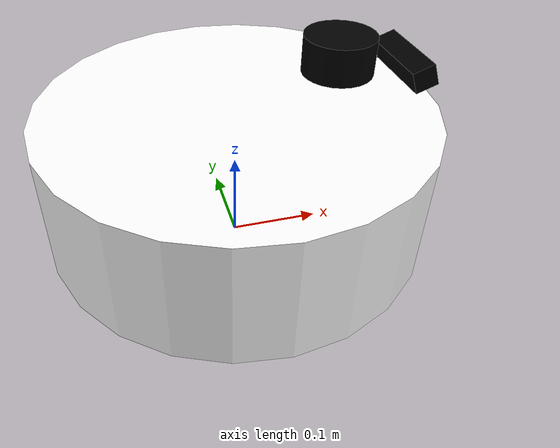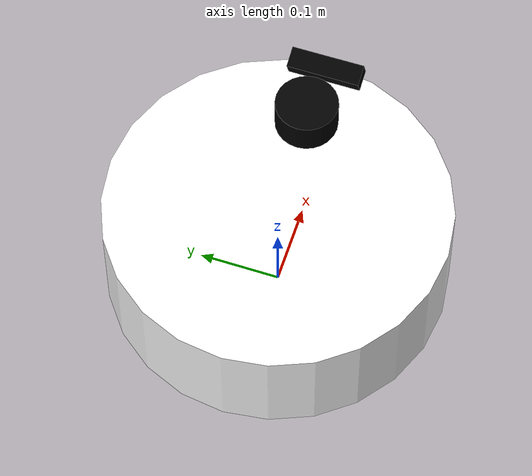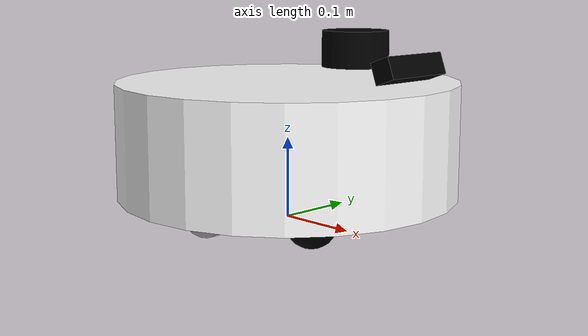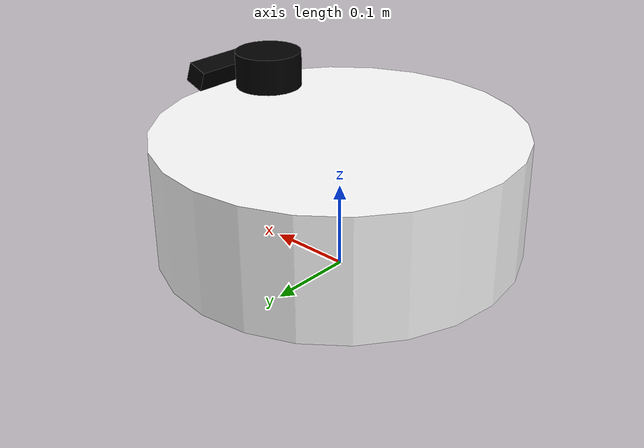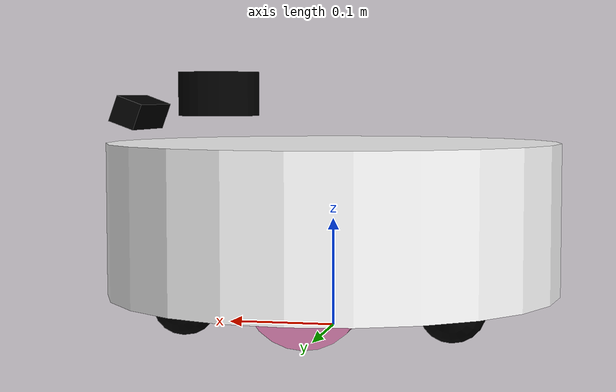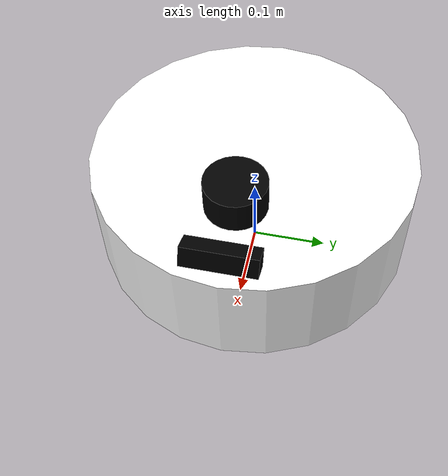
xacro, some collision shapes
<?xml version="1.0"?>
<!-- Copyright (c) Qualcomm Technologies, Inc. and/or its subsidiaries.
SPDX-License-Identifier: BSD-3-Clause-Clear -->
<robot xmlns:xacro="http://www.ros.org/wiki/xacro" name="$(arg robot_name)">
  <!-- Robot base -->
  <xacro:include filename="$(find qrb_ros_sim_description)/urdf/qrb_robot_base/qrb_robot_base_mini.urdf" />
  <xacro:qrb_robot_base_mini ns=""/>

  <!-- Gazebo Sensors -->
  <!-- Laser -->
  <xacro:arg name="enable_laser" default="false"/>
  <xacro:arg name="laser_config" default=""/>
  <xacro:if value="${'$(arg enable_laser)' if '$(arg laser_config)' != '' else 'false'}">
    <xacro:include filename="$(find qrb_ros_sim_gazebo)/urdf/xacro/gazebo_lidar.xacro" />
    <xacro:gazebo_lidar ns="" reference_link="laser"
      laser_params_yaml_path="$(arg laser_config)"/>
  </xacro:if>
  <!-- IMU -->
  <xacro:arg name="enable_imu" default="false"/>
  <xacro:arg name="imu_config" default=""/>
  <xacro:if value="${'$(arg enable_imu)' if '$(arg imu_config)' != '' else 'false'}">
    <xacro:include filename="$(find qrb_ros_sim_gazebo)/urdf/xacro/gazebo_imu.xacro" />
    <xacro:gazebo_imu ns="" reference_link="base_imu_link"
      imu_params_yaml_path="$(arg imu_config)"/>
  </xacro:if>
  <!-- RGB camera -->
  <xacro:arg name="enable_rgb_camera" default="false"/>
  <xacro:arg name="rgb_camera_config" default=""/>
  <xacro:if value="${'$(arg enable_rgb_camera)' if '$(arg rgb_camera_config)' != '' else 'false'}">
    <xacro:include filename="$(find qrb_ros_sim_gazebo)/urdf/xacro/gazebo_rgb_camera.xacro" />
    <xacro:gazebo_camera ns="" reference_link="base_camera_color_frame"
      camera_params_yaml_path="$(arg rgb_camera_config)"/>
  </xacro:if>
  <!-- Depth camera -->
  <xacro:arg name="enable_depth_camera" default="false"/>
  <xacro:arg name="depth_camera_config" default=""/>
  <xacro:if value="${'$(arg enable_depth_camera)' if '$(arg depth_camera_config)' != '' else 'false'}">
    <xacro:include filename="$(find qrb_ros_sim_gazebo)/urdf/xacro/gazebo_depth_camera.xacro" />
    <xacro:gazebo_depth_camera ns="" reference_link="base_camera_depth_frame"
      depth_camera_params_yaml_path="$(arg depth_camera_config)"/>
  </xacro:if>

  <!-- Gazebo Plugins -->
  <!-- gz-sim-diff-drive-system controller -->
  <xacro:property name="separation_multiplier" value="1.125"/>
  <xacro:property name="radius_multiplier" value="1.0"/>
  <xacro:property name="odom_update_rate" value="50"/>
  <xacro:include filename="$(find qrb_ros_sim_gazebo)/urdf/xacro/gazebo_qrb_robot_base_diff_drive.xacro" />
  <xacro:qrb_robot_base_diff_drive ns="" wheel_separation="${wheel_separation}" separation_multiplier="${separation_multiplier}"
      wheel_radius="${wheel_radius}" radius_multiplier="${radius_multiplier}" update_rate="${odom_update_rate}"/>
  <!-- gz-sim-joint-state-publisher-system controller -->
  <xacro:include filename="$(find qrb_ros_sim_gazebo)/urdf/xacro/gazebo_qrb_robot_base_joint_state_pub.xacro" />
  <xacro:qrb_robot_base_joint_state_pub ns=""/>

</robot>

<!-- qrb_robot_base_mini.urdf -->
<!--
# Copyright (c) 2025 Qualcomm Innovation Center, Inc. All rights reserved.
# SPDX-License-Identifier: BSD-3-Clause-Clear
-->
<robot xmlns:xacro="http://ros.org/wiki/xacro">
  <xacro:macro name="qrb_robot_base_mini" params="ns:=''">
    <xacro:property name="namespace" value="${ns + '/' if ns != '' else ''}" />
    <!-- Inertia matrices -->
    <xacro:include filename="$(find qrb_ros_sim_description)/urdf/qrb_robot_base/inertia_macros.xacro" />
    <!-- Material matrices -->
    <xacro:include filename="$(find qrb_ros_sim_description)/urdf/qrb_robot_base/material_macros.xacro" />

    <xacro:property name="cylinder_radius" value="0.21" />
    <xacro:property name="cylinder_height" value="0.14" />
    <xacro:property name="chassis_height" value="0.031" />
    <xacro:property name="caster_wheel_radius" value="0.03"/>
    <xacro:property name="wheel_radius" value="0.053" scope="parent" />
    <xacro:property name="wheel_thickness" value="0.031" />
    <xacro:property name="wheel_separation" value="0.25" scope="parent" />
    <xacro:property name="laser_radius" value="0.038" />
    <xacro:property name="laser_thickness" value="0.041" />
    <xacro:property name="laser_heigth" value="0.216" />
    <xacro:property name="camera_box_length" value="0.09" />
    <xacro:property name="camera_box_width" value="0.025" />
    <xacro:property name="camera_box_heigth" value="0.025" />

    <xacro:property name="base_link_mass" value="16.5"/>
    <xacro:property name="laser_link_mass" value="0.3"/>
    <xacro:property name="base_camera_link_mass" value="0.1"/>
    <xacro:property name="wheel_link_mass" value="1"/>
    <xacro:property name="caster_wheel_link_mass" value="0.3"/>

    <link name="${namespace}base_footprint"/>

    <link name="${namespace}base_link">
      <visual>
        <origin rpy="0 0 -${pi/2}" xyz="0 0 -${cylinder_height/2}"/>
        <geometry>
          <mesh filename="file://$(find qrb_ros_sim_description)/meshes/qrb_robot_base/wheelTec_AMR_mini.STL" scale="0.001 0.001 0.001"/>
        </geometry>
        <material name="white"/>
      </visual>
      <inertial name="base_link_inertial">
        <mass value="${base_link_mass}"/>
        <xacro:cylinder_inertia_calculator mass="${base_link_mass}" radius="${cylinder_radius}" length="${cylinder_height}" />
      </inertial>
      <collision name="base_link_collision">
        <origin rpy="0 0 0" xyz="0 0 0"/>
        <geometry>
          <cylinder radius="${cylinder_radius}" length="${cylinder_height}"/>
        </geometry>
      </collision>
    </link>

    <joint name="${namespace}base_link_joint" type="fixed">
      <parent link="${namespace}base_footprint"/>
      <child link="${namespace}base_link"/>
      <origin xyz="0 0 ${chassis_height+cylinder_height/2}"/>
    </joint>

    <link name="${namespace}laser">
      <visual>
        <origin xyz="0 0 0" rpy="0 0 ${pi}"/>
        <geometry>
          <cylinder radius="${laser_radius}" length="${laser_thickness}" />
        </geometry>
        <material name="transparent"/>
      </visual>
      <inertial>
        <mass value="${laser_link_mass}"/>
        <xacro:cylinder_inertia_calculator mass="${laser_link_mass}" radius="${laser_radius}" length="${laser_thickness}"/>
      </inertial>
      <collision>
        <origin xyz="0 0 0" rpy="0 0 ${pi}"/>
        <geometry>
          <cylinder radius="${laser_radius}" length="${laser_thickness}" />
        </geometry>
      </collision>
    </link>
    <joint name="${namespace}laser_joint" type="fixed">
      <parent link="${namespace}base_link"/>
      <child link="${namespace}laser"/>
      <origin xyz="${cylinder_radius/2+0.005} 0 ${laser_heigth-chassis_height-(cylinder_height/2)}" rpy="0 0 0" />
    </joint>

    <link name="${namespace}base_camera_link">
      <visual>
        <origin xyz="0 0 0" rpy="0 0 ${pi/2}"/>
        <geometry>
          <box size="${camera_box_length} ${camera_box_width} ${camera_box_heigth}"/>
        </geometry>
        <material name="transparent"/>
      </visual>
      <inertial>
        <mass value="0.01"/>
        <xacro:box_inertia_calculator mass="${base_camera_link_mass}" length="${camera_box_length}" width="${camera_box_width}" height="${camera_box_heigth}" />
      </inertial>
      <collision name="base_camera_link_collision">
        <origin rpy="0 0 0" xyz="0 0 ${pi/2}"/>
        <geometry>
          <box size="${camera_box_length} ${camera_box_width} ${camera_box_heigth}"/>
        </geometry>
      </collision>
    </link>
    <joint name="${namespace}base_to_camera_joint" type="fixed">
      <origin xyz="${cylinder_radius-camera_box_width/2-0.01} 0 ${cylinder_height/2+camera_box_heigth/2+0.015}" rpy="0 -${pi/9} 0"/>
      <parent link="${namespace}base_link"/>
      <child link="${namespace}base_camera_link"/>
    </joint>

    <link name="${namespace}base_camera_color_frame"/>
    <joint name="${namespace}base_camera_color_frame_joint" type="fixed">
      <parent link="${namespace}base_camera_link"/>
      <child link="${namespace}base_camera_color_frame"/>
      <origin xyz="0 0 0"/>
    </joint>

    <link name="${namespace}base_camera_depth_frame"/>
    <joint name="${namespace}base_camera_depth_frame_joint" type="fixed">
      <parent link="${namespace}base_camera_link"/>
      <child link="${namespace}base_camera_depth_frame"/>
      <origin xyz="0 0 0"/>
    </joint>

    <!-- Wheel_left Link -->
    <link name="${namespace}wheel_left">
      <inertial name="wheel_left_inertial">
        <mass value="${wheel_link_mass}"/>
        <xacro:cylinder_inertia_calculator mass="${wheel_link_mass}" radius="${wheel_radius}" length="${wheel_thickness}"/>
      </inertial>
      <collision name="wheel_left_collision">
        <origin xyz="0 0 0" rpy="${pi/2} 0 0"/>
        <geometry>
          <cylinder radius="${wheel_radius}" length="${wheel_thickness}"/>
        </geometry>
      </collision>
      <visual name="wheel_left_visual">
        <origin xyz="0 0 0" rpy="${pi/2} 0 0"/>
        <geometry>
          <cylinder radius="${wheel_radius}" length="${wheel_thickness}"/>
        </geometry>
      </visual>
    </link>

    <!-- Wheel_right Link -->
    <link name="${namespace}wheel_right">
      <inertial name="wheel_right_inertial">
        <mass value="${wheel_link_mass}"/>
        <xacro:cylinder_inertia_calculator mass="${wheel_link_mass}" radius="${wheel_radius}" length="${wheel_thickness}"/>
      </inertial>
      <collision name="wheel_right_collision">
        <origin xyz="0 0 0" rpy="${pi/2} 0 0"/>
        <geometry>
          <cylinder radius="${wheel_radius}" length="${wheel_thickness}"/>
        </geometry>
      </collision>
      <visual name="wheel_right_visual">
        <origin xyz="0 0 0" rpy="${pi/2} 0 0"/>
        <geometry>
          <cylinder radius="${wheel_radius}" length="${wheel_thickness}"/>
        </geometry>
      </visual>
    </link>

    <!-- Wheel_left Joint Link -->
    <joint name="${namespace}wheel_left_joint" type="continuous">
      <origin xyz="0 ${wheel_separation/2} -${chassis_height+cylinder_height/2-wheel_radius}" rpy="0 0 0"/>
      <child link="${namespace}wheel_left"/>
      <parent link="${namespace}base_link"/>
      <axis xyz="0 1 0"/>
    </joint>

    <!-- Wheel_right Joint Link -->
    <joint name="${namespace}wheel_right_joint" type="continuous">
      <origin xyz="0 -${wheel_separation/2} -${chassis_height+cylinder_height/2-wheel_radius}" rpy="0 0 0"/>
      <child link="${namespace}wheel_right"/>
      <parent link="${namespace}base_link"/>
      <axis xyz="0 1 0" />
    </joint>

    <link name="${namespace}caster_wheel_link1">
      <visual>
        <origin xyz="0 0 0" rpy="${pi/2} 0 0"/>
        <geometry>
          <sphere radius="${caster_wheel_radius}"/>
        </geometry>
        <material name="transparent"/>
      </visual>
      <collision>
        <origin xyz="0 0 0" rpy="${pi/2} 0 0"/>
        <geometry>
          <sphere radius="${caster_wheel_radius}"/>
        </geometry>
      </collision>
      <inertial>
        <mass value="${caster_wheel_link_mass}"/>
        <xacro:sphere_inertia_calculator mass="${caster_wheel_link_mass}" radius="${caster_wheel_radius}" />
      </inertial>
    </link>
    <joint name="${namespace}caster_wheel_joint1" type="continuous">
      <parent link="${namespace}base_link" />
      <child link="${namespace}caster_wheel_link1" />
      <origin xyz="0.12 0.08 -${chassis_height+cylinder_height/2-caster_wheel_radius}" />
      <axis xyz="1 1 1" />
    </joint>

    <link name="${namespace}caster_wheel_link2">
      <visual>
        <origin xyz="0 0 0" rpy="${pi/2} 0 0"/>
        <geometry>
          <sphere radius="${caster_wheel_radius}"/>
        </geometry>
        <material name="transparent"/>
      </visual>
      <collision>
        <origin xyz="0 0 0" rpy="${pi/2} 0 0"/>
        <geometry>
          <sphere radius="${caster_wheel_radius}"/>
        </geometry>
      </collision>
      <inertial>
        <mass value="${caster_wheel_link_mass}"/>
        <xacro:sphere_inertia_calculator mass="${caster_wheel_link_mass}" radius="${caster_wheel_radius}" />
      </inertial>
    </link>
    <joint name="${namespace}caster_wheel_joint2" type="continuous">
      <parent link="${namespace}base_link" />
      <child link="${namespace}caster_wheel_link2" />
      <origin xyz="-0.12 0.08 -${chassis_height+cylinder_height/2-caster_wheel_radius}" />
      <axis xyz="1 1 1" />
    </joint>

    <link name="${namespace}caster_wheel_link3">
      <visual>
        <origin xyz="0 0 0" rpy="${pi/2} 0 0"/>
        <geometry>
          <sphere radius="${caster_wheel_radius}"/>
        </geometry>
        <material name="transparent"/>
      </visual>
      <collision>
        <origin xyz="0 0 0" rpy="${pi/2} 0 0"/>
        <geometry>
          <sphere radius="${caster_wheel_radius}"/>
        </geometry>
      </collision>
      <inertial>
        <mass value="${caster_wheel_link_mass}"/>
        <xacro:sphere_inertia_calculator mass="${caster_wheel_link_mass}" radius="${caster_wheel_radius}" />
      </inertial>
    </link>
    <joint name="${namespace}caster_wheel_joint3" type="continuous">
      <parent link="${namespace}base_link" />
      <child link="${namespace}caster_wheel_link3" />
      <origin xyz="0.12 -0.08  -${chassis_height+cylinder_height/2-caster_wheel_radius}" />
      <axis xyz="1 1 1" />
    </joint>

    <link name="${namespace}caster_wheel_link4">
      <visual>
        <origin xyz="0 0 0" rpy="${pi/2} 0 0"/>
        <geometry>
          <sphere radius="${caster_wheel_radius}"/>
        </geometry>
        <material name="transparent"/>
      </visual>
      <collision>
        <origin xyz="0 0 0" rpy="${pi/2} 0 0"/>
        <geometry>
          <sphere radius="${caster_wheel_radius}"/>
        </geometry>
      </collision>
      <inertial>
        <mass value="${caster_wheel_link_mass}"/>
        <xacro:sphere_inertia_calculator mass="${caster_wheel_link_mass}" radius="${caster_wheel_radius}" />
      </inertial>
    </link>
    <joint name="${namespace}caster_wheel_joint4" type="continuous">
      <parent link="${namespace}base_link" />
      <child link="${namespace}caster_wheel_link4" />
      <origin xyz="-0.12 -0.08  -${chassis_height+cylinder_height/2-caster_wheel_radius}" />
      <axis xyz="1 1 1" />
    </joint>

    <link name="${namespace}base_imu_link">
      <inertial>
        <mass value="0.01"/>
        <inertia ixx="1.0" ixy="0" ixz="0" iyy="1.0" iyz="0" izz="1.0"/>
      </inertial>
    </link>
    <joint name="${namespace}base_to_imu_joint" type="fixed">
      <origin xyz="0.0 0.0 0.0"/>
      <parent link="${namespace}base_link"/>
      <child link="${namespace}base_imu_link"/>
    </joint>

    <!-- Gazebo elements -->
    <gazebo reference="${namespace}caster_wheel_link1">
      <mu1>0</mu1>
      <mu2>0</mu2>
    </gazebo>
    <gazebo reference="${namespace}caster_wheel_link2">
      <mu1>0</mu1>
      <mu2>0</mu2>
    </gazebo>
    <gazebo reference="${namespace}caster_wheel_link3">
      <mu1>0</mu1>
      <mu2>0</mu2>
    </gazebo>
    <gazebo reference="${namespace}caster_wheel_link4">
      <mu1>0</mu1>
      <mu2>0</mu2>
    </gazebo>
  </xacro:macro>
</robot>

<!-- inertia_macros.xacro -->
<robot xmlns:xacro="http://www.ros.org/wiki/xacro">
  <xacro:macro name="box_inertia_calculator" params="mass length width height">
    <inertia
      ixx="${mass / 12 * (width**2 + height**2)}"
      ixy="0"
      ixz="0"
      iyy="${mass / 12 * (length**2 + height**2)}"
      iyz="0"
      izz="${mass / 12 * (length**2 + width**2)}"/>
  </xacro:macro>

  <xacro:macro name="cylinder_inertia_calculator" params="mass radius length">
    <inertia
      ixx="${mass / 12 * (3 * radius**2 + length**2)}"
      ixy="0"
      ixz="0"
      iyy="${mass / 12 * (3 * radius**2 + length**2)}"
      iyz="0"
      izz="${mass / 2 * radius**2}"/>
  </xacro:macro>

  <xacro:macro name="sphere_inertia_calculator" params="mass radius">
    <inertia
      ixx="${2/5 * mass * radius**2}"
      ixy="0"
      ixz="0"
      iyy="${2/5 * mass * radius**2}"
      iyz="0"
      izz="${2/5 * mass * radius**2}"/>
  </xacro:macro>
</robot>

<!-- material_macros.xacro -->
<robot xmlns:xacro="http://www.ros.org/wiki/xacro">
  <material name="white">
    <color rgba="1 1 1 1"/>
  </material>
  <material name="black">
    <color rgba="0 0 0 1"/>
  </material>
  <material name="transparent">
    <color rgba="0 0 0 0"/>
  </material>
</robot>
